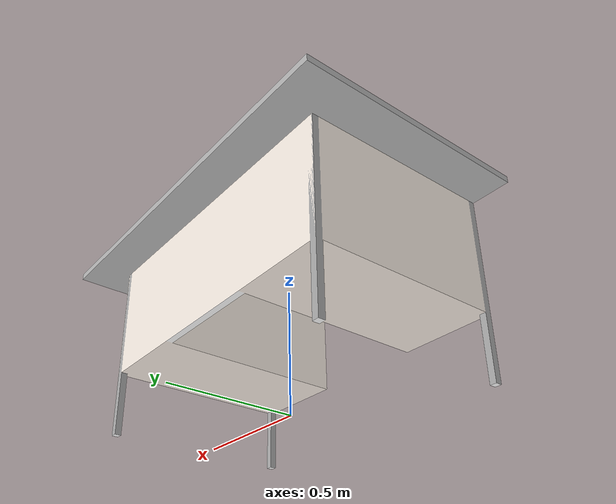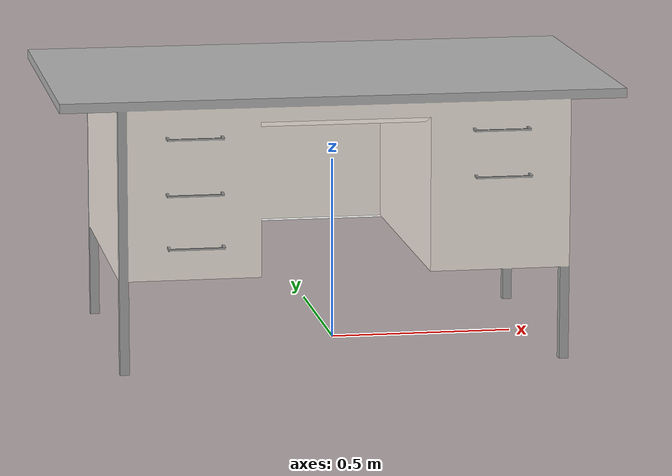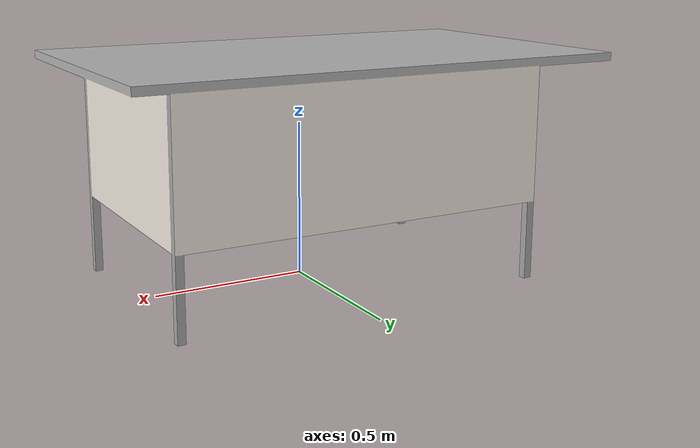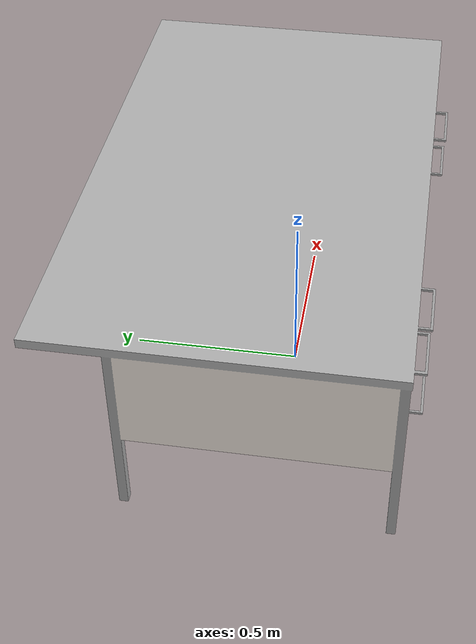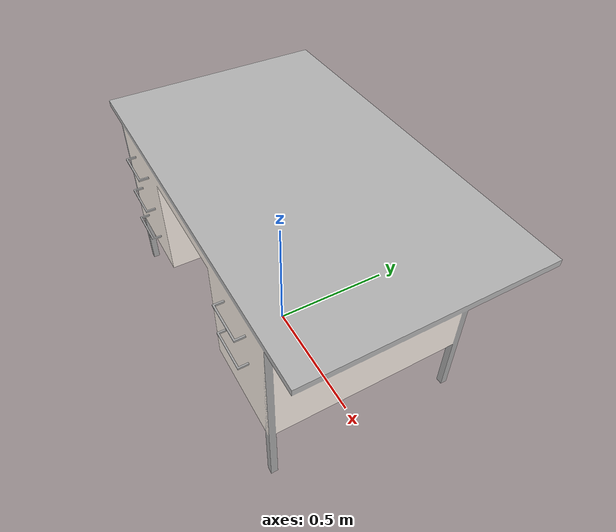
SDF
<?xml version="1.0"?>
<sdf version="1.4">
  <model name="desk">
    <static>false</static>
    <link name="link">
      <collision name="collision">
<pose>-0.02 0.10 0.37 0 0 0</pose>
        <geometry>
	<box>
      	   <size>1.532 0.916 0.74</size>
	</box>
        </geometry>
      </collision>
      <visual name="visual">
        <geometry>
          <mesh>
            <uri>model://desk/meshes/desk.dae</uri>
          </mesh>
        </geometry>
      </visual>

    </link>
  </model>
</sdf>
